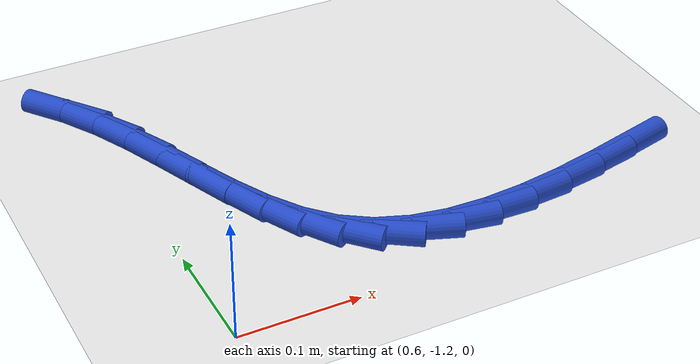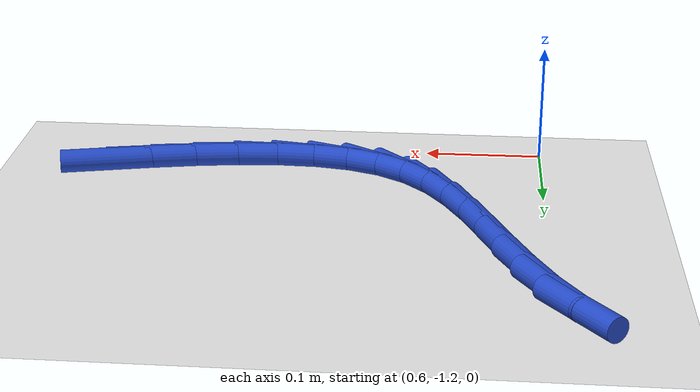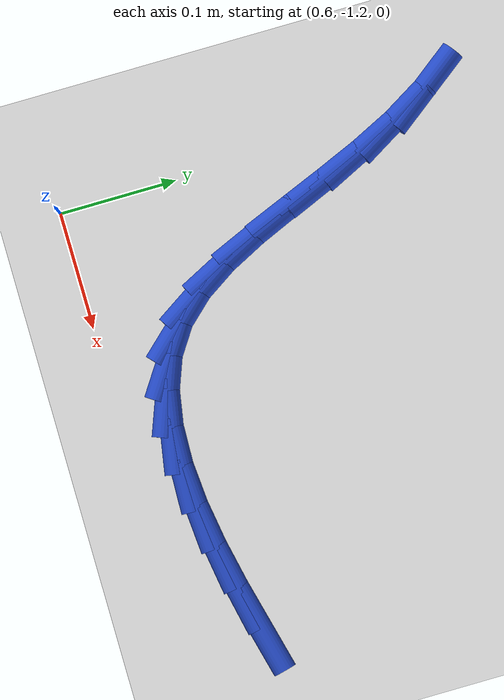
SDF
<sdf version="1.6">
 <world name="default">
  <model name="ground_plane">
   <static>1</static>
   <link name="link">
    <collision name="collision">
     <geometry><plane><normal>0 0 1</normal><size>100 100</size></plane></geometry>
     <surface><friction><ode><mu>100</mu><mu2>50</mu2></ode></friction></surface>
    </collision>
    <visual name="visual">
     <cast_shadows>0</cast_shadows>
     <geometry><plane><normal>0 0 1</normal><size>100 100</size></plane></geometry>
     <material>
      <script><uri>file://media/materials/scripts/gazebo.material</uri><name>Gazebo/WhiteGlow</name></script>
     </material>
    </visual>
   </link>
  </model>
  <model name="line">
   <link name="link_152">
    <pose>0.9777377743232931 -1.1347302659570069 0.01 0 1.57 0.24453482228294754</pose>
    <collision name="collision">
     <geometry><cylinder><radius>0.01</radius><length>0.08</length></cylinder></geometry>
    </collision>
    <visual name="visual">
     <material>
      <script><name>Gazebo/Blue</name><uri>file://media/materials/scripts/gazebo.material</uri></script>
     </material>
     <geometry><cylinder><radius>0.01</radius><length>0.08</length></cylinder></geometry>
    </visual>
   </link>
   <link name="link_153">
    <pose>0.939089532159656 -1.144374102746137 0.01 0 1.57 0.20800240046256302</pose>
    <collision name="collision">
     <geometry><cylinder><radius>0.01</radius><length>0.08</length></cylinder></geometry>
    </collision>
    <visual name="visual">
     <material>
      <script><name>Gazebo/Blue</name><uri>file://media/materials/scripts/gazebo.material</uri></script>
     </material>
     <geometry><cylinder><radius>0.01</radius><length>0.08</length></cylinder></geometry>
    </visual>
   </link>
   <link name="link_154">
    <pose>0.9012077889271911 -1.1523692333255215 0.01 0 1.57 0.15347384199661088</pose>
    <collision name="collision">
     <geometry><cylinder><radius>0.01</radius><length>0.08</length></cylinder></geometry>
    </collision>
    <visual name="visual">
     <material>
      <script><name>Gazebo/Blue</name><uri>file://media/materials/scripts/gazebo.material</uri></script>
     </material>
     <geometry><cylinder><radius>0.01</radius><length>0.08</length></cylinder></geometry>
    </visual>
   </link>
   <link name="link_155">
    <pose>0.8645387427438079 -1.1580415787074474 0.01 0 1.57 0.07627190936182549</pose>
    <collision name="collision">
     <geometry><cylinder><radius>0.01</radius><length>0.08</length></cylinder></geometry>
    </collision>
    <visual name="visual">
     <material>
      <script><name>Gazebo/Blue</name><uri>file://media/materials/scripts/gazebo.material</uri></script>
     </material>
     <geometry><cylinder><radius>0.01</radius><length>0.08</length></cylinder></geometry>
    </visual>
   </link>
   <link name="link_156">
    <pose>0.8295285917274164 -1.1607170599042003 0.01 0 1.57 -0.03024332803276042</pose>
    <collision name="collision">
     <geometry><cylinder><radius>0.01</radius><length>0.08</length></cylinder></geometry>
    </collision>
    <visual name="visual">
     <material>
      <script><name>Gazebo/Blue</name><uri>file://media/materials/scripts/gazebo.material</uri></script>
     </material>
     <geometry><cylinder><radius>0.01</radius><length>0.08</length></cylinder></geometry>
    </visual>
   </link>
   <link name="link_157">
    <pose>0.7966235339959256 -1.159721597928066 0.01 0 1.57 -0.1741589463252267</pose>
    <collision name="collision">
     <geometry><cylinder><radius>0.01</radius><length>0.08</length></cylinder></geometry>
    </collision>
    <visual name="visual">
     <material>
      <script><name>Gazebo/Blue</name><uri>file://media/materials/scripts/gazebo.material</uri></script>
     </material>
     <geometry><cylinder><radius>0.01</radius><length>0.08</length></cylinder></geometry>
    </visual>
   </link>
   <link name="link_158">
    <pose>0.7662697676672453 -1.154381113791331 0.01 0 1.57 -0.3620029848039409</pose>
    <collision name="collision">
     <geometry><cylinder><radius>0.01</radius><length>0.08</length></cylinder></geometry>
    </collision>
    <visual name="visual">
     <material>
      <script><name>Gazebo/Blue</name><uri>file://media/materials/scripts/gazebo.material</uri></script>
     </material>
     <geometry><cylinder><radius>0.01</radius><length>0.08</length></cylinder></geometry>
    </visual>
   </link>
   <link name="link_159">
    <pose>0.7389134908592856 -1.1440215285062818 0.01 0 1.57 -0.59120486175902</pose>
    <collision name="collision">
     <geometry><cylinder><radius>0.01</radius><length>0.08</length></cylinder></geometry>
    </collision>
    <visual name="visual">
     <material>
      <script><name>Gazebo/Blue</name><uri>file://media/materials/scripts/gazebo.material</uri></script>
     </material>
     <geometry><cylinder><radius>0.01</radius><length>0.08</length></cylinder></geometry>
    </visual>
   </link>
   <link name="link_160">
    <pose>0.7150008088148577 -1.1279688957319327 0.01 0 1.57 -0.8262286041632461</pose>
    <collision name="collision">
     <geometry><cylinder><radius>0.01</radius><length>0.08</length></cylinder></geometry>
    </collision>
    <visual name="visual">
     <material>
      <script><name>Gazebo/Blue</name><uri>file://media/materials/scripts/gazebo.material</uri></script>
     </material>
     <geometry><cylinder><radius>0.01</radius><length>0.08</length></cylinder></geometry>
    </visual>
   </link>
   <link name="link_161">
    <pose>0.6947029184449253 -1.1059419006489486 0.01 0 1.57 -0.9990027037834206</pose>
    <collision name="collision">
     <geometry><cylinder><radius>0.01</radius><length>0.08</length></cylinder></geometry>
    </collision>
    <visual name="visual">
     <material>
      <script><name>Gazebo/Blue</name><uri>file://media/materials/scripts/gazebo.material</uri></script>
     </material>
     <geometry><cylinder><radius>0.01</radius><length>0.08</length></cylinder></geometry>
    </visual>
   </link>
   <link name="link_162">
    <pose>0.6773113944699657 -1.0789155286628884 0.01 0 1.57 -1.107950697998919</pose>
    <collision name="collision">
     <geometry><cylinder><radius>0.01</radius><length>0.08</length></cylinder></geometry>
    </collision>
    <visual name="visual">
     <material>
      <script><name>Gazebo/Blue</name><uri>file://media/materials/scripts/gazebo.material</uri></script>
     </material>
     <geometry><cylinder><radius>0.01</radius><length>0.08</length></cylinder></geometry>
    </visual>
   </link>
   <link name="link_163">
    <pose>0.6619422485640178 -1.0481155090749414 0.01 0 1.57 -1.167456431081226</pose>
    <collision name="collision">
     <geometry><cylinder><radius>0.01</radius><length>0.08</length></cylinder></geometry>
    </collision>
    <visual name="visual">
     <material>
      <script><name>Gazebo/Blue</name><uri>file://media/materials/scripts/gazebo.material</uri></script>
     </material>
     <geometry><cylinder><radius>0.01</radius><length>0.08</length></cylinder></geometry>
    </visual>
   </link>
   <link name="link_164">
    <pose>0.6477114924011204 -1.0147675711862976 0.01 0 1.57 -1.1875998868354107</pose>
    <collision name="collision">
     <geometry><cylinder><radius>0.01</radius><length>0.08</length></cylinder></geometry>
    </collision>
    <visual name="visual">
     <material>
      <script><name>Gazebo/Blue</name><uri>file://media/materials/scripts/gazebo.material</uri></script>
     </material>
     <geometry><cylinder><radius>0.01</radius><length>0.08</length></cylinder></geometry>
    </visual>
   </link>
   <link name="link_165">
    <pose>0.633735137655312 -0.9800974442981464 0.01 0 1.57 -1.1730711425299574</pose>
    <collision name="collision">
     <geometry><cylinder><radius>0.01</radius><length>0.08</length></cylinder></geometry>
    </collision>
    <visual name="visual">
     <material>
      <script><name>Gazebo/Blue</name><uri>file://media/materials/scripts/gazebo.material</uri></script>
     </material>
     <geometry><cylinder><radius>0.01</radius><length>0.08</length></cylinder></geometry>
    </visual>
   </link>
   <link name="link_166">
    <pose>0.6191291960006307 -0.9453308577116764 0.01 0 1.57 -1.1239143083731953</pose>
    <collision name="collision">
     <geometry><cylinder><radius>0.01</radius><length>0.08</length></cylinder></geometry>
    </collision>
    <visual name="visual">
     <material>
      <script><name>Gazebo/Blue</name><uri>file://media/materials/scripts/gazebo.material</uri></script>
     </material>
     <geometry><cylinder><radius>0.01</radius><length>0.08</length></cylinder></geometry>
    </visual>
   </link>
   <link name="link_167">
    <pose>0.6030096791111158 -0.9116935407280782 0.01 0 1.57 -1.0366441145814194</pose>
    <collision name="collision">
     <geometry><cylinder><radius>0.01</radius><length>0.08</length></cylinder></geometry>
    </collision>
    <visual name="visual">
     <material>
      <script><name>Gazebo/Blue</name><uri>file://media/materials/scripts/gazebo.material</uri></script>
     </material>
     <geometry><cylinder><radius>0.01</radius><length>0.08</length></cylinder></geometry>
    </visual>
   </link>
   <link name="link_168">
    <pose>0.584500178761207 -0.8804015029515072 0.01 0 1.57 -0.9256665371185553</pose>
    <collision name="collision">
     <geometry><cylinder><radius>0.01</radius><length>0.08</length></cylinder></geometry>
    </collision>
    <visual name="visual">
     <material>
      <script><name>Gazebo/Blue</name><uri>file://media/materials/scripts/gazebo.material</uri></script>
     </material>
     <geometry><cylinder><radius>0.01</radius><length>0.08</length></cylinder></geometry>
    </visual>
   </link>
  </model>
 </world>
</sdf>
